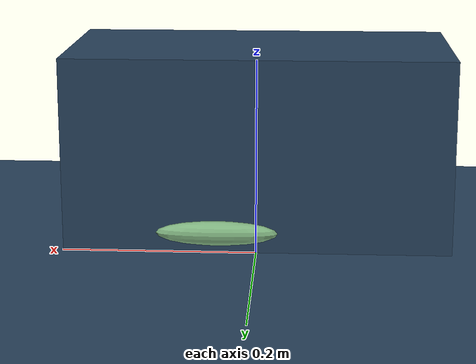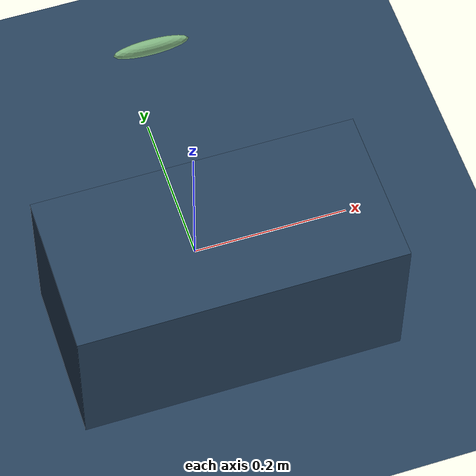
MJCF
<mujoco model="left_hand_wall">
  <option noslip_iterations="3"/>

  <size nuserdata="12"/>
  <statistic extent="0.3" center="0.3 0 0"/>

  <visual>
    <rgba haze="0.15 0.25 0.35 1"/>
    <quality shadowsize="8192"/>
    <global azimuth="220" elevation="-30"/>
  </visual>

  <asset>
    <texture type="skybox" builtin="gradient" rgb1="0.3 0.5 0.7" rgb2="0 0 0" width="512"
        height="3072"/>
    <texture type="2d" name="groundplane" builtin="checker" mark="edge" rgb1="0.2 0.3 0.4"
        rgb2="0.1 0.2 0.3" markrgb="0.8 0.8 0.8" width="300" height="300"/>
    <material name="groundplane" texture="groundplane" texuniform="true" texrepeat="5 5"
        reflectance="0"/>
  </asset>

  <worldbody>
    <light pos="0 0 1"/>
    <light pos="0.1 0.2 0.2" dir="-0.5 -0.5 -1" directional="true"/>
    <geom name="floor" pos="0 0 0" size="0 0 0.05" type="plane" material="groundplane"/>
    <geom name="wall" pos="0 -0.1 0.1"  size="0.2 0.1 0.1" type="box" material="groundplane"/>
    <body name="object" pos="0.022 0.25 0.1">
      <freejoint/>
      <geom type="ellipsoid" size="0.05 0.01 0.01" rgba="0.5 0.7 0.5 1" condim="6" priority="1" mass="0.05"
            friction="1.5 0.01 0.001"/>
    </body>
  </worldbody>

</mujoco>
